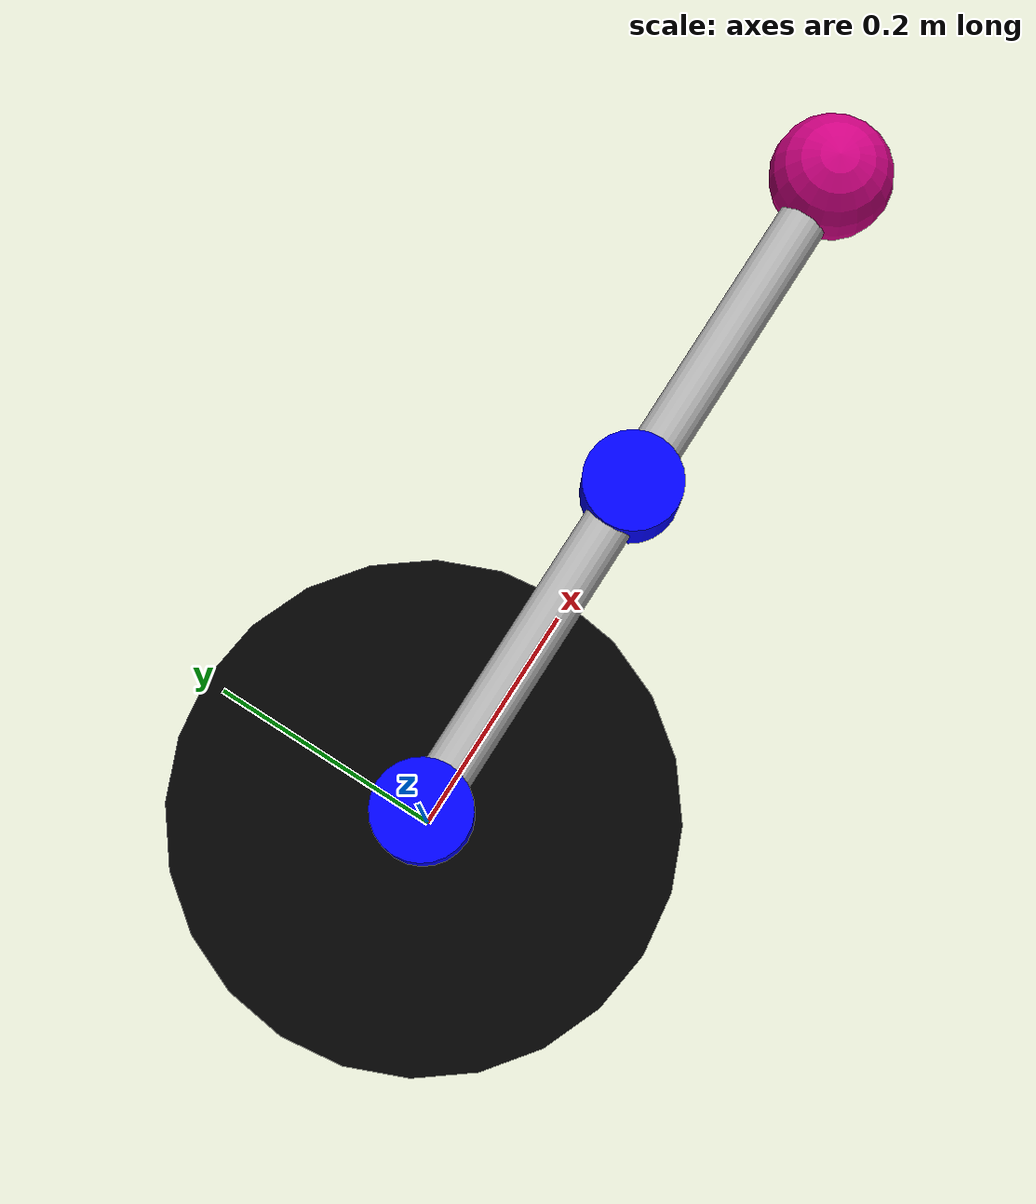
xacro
<?xml version="1.0"?>
<robot name="reacher5" xmlns:xacro="http://ros.org/wiki/xacro">

  <gazebo>
      <self_collide>true</self_collide>
  </gazebo>

  <xacro:arg name="namespace" default="" />
  <xacro:arg name="dof" default="2" />
  <xacro:arg name="use_imu" default="false" />
  <xacro:arg name="use_lidar" default="false" />
  <xacro:arg name="use_rgb" default="false" />
  <xacro:arg name="use_rgbd" default="false" />

  <xacro:include filename="$(find marr_gz)/urdf/inertia.xacro" />
  <xacro:include filename="$(find marr_gz)/urdf/sensors.xacro" />

  <xacro:property name="base_mass" value="5.0" />

  <xacro:property name="arm_radius" value="0.02" />
  <xacro:property name="arm_length" value="0.3" />
  <xacro:property name="arm_mass" value="0.10" />

  <xacro:property name="j_radius" value="0.04" />

  <xacro:property name="friction" value="0.01" />
  <xacro:property name="damping" value="0.05" />
  <xacro:property name="max_effort" value="1000.0" />
  <xacro:property name="max_velocity" value="10.0" />

  <xacro:include filename="reacher_base.urdf.xacro" />

  <!-- Links -->

  <link name="base_footprint"/>

  <xacro:base_link name="base_link" />

  <xacro:if value="${$(arg dof) == 2 or $(arg dof) == 3}">
    <xacro:arm_link name="arm_link1" radius="${arm_radius}" length="${arm_length}" mass="${arm_mass}" />
  </xacro:if>

  <xacro:if value="${$(arg dof) == 4 or $(arg dof) == 5 or $(arg dof) == 6}">
    <xacro:arm_link_v name="arm_link1" radius="${arm_radius}" length="0.1" mass="${arm_mass}" />
  </xacro:if>

  <xacro:arm_link name="arm_link2" radius="${arm_radius}" length="${arm_length}" mass="${arm_mass}" />
  <xacro:if value="${$(arg dof) > 2}">
    <xacro:arm_link name="arm_link3" radius="${arm_radius}" length="${arm_length}" mass="${arm_mass}" />
  </xacro:if>
  <xacro:if value="${$(arg dof) > 3}">
    <xacro:arm_link name="arm_link4" radius="${arm_radius}" length="${arm_length}" mass="${arm_mass}" />
  </xacro:if>
  <xacro:if value="${$(arg dof) > 4}">
    <xacro:arm_link name="arm_link5" radius="${arm_radius}" length="${arm_length}" mass="${arm_mass}" />
  </xacro:if>
  <xacro:if value="${$(arg dof) > 5}">
    <xacro:arm_link name="arm_link6" radius="${arm_radius}" length="${arm_length}" mass="${arm_mass}" />
  </xacro:if>

  <xacro:if value="${$(arg dof) == 2}">
    <xacro:arm_joint_link_z name="arm_joint_link1" radius="${j_radius}" />
    <xacro:arm_joint_link_z name="arm_joint_link2" radius="${j_radius}" />
  </xacro:if>

  <xacro:if value="${$(arg dof) == 3}">
    <xacro:arm_joint_link_z name="arm_joint_link1" radius="${j_radius}" />
    <xacro:arm_joint_link_z name="arm_joint_link2" radius="${j_radius}" />
    <xacro:arm_joint_link_z name="arm_joint_link3" radius="${j_radius}" />
  </xacro:if>

  <xacro:if value="${$(arg dof) == 4}">
    <xacro:arm_joint_link_z name="arm_joint_link1" radius="${j_radius}" />
    <xacro:arm_joint_link_y name="arm_joint_link2" radius="${j_radius}" />
    <xacro:arm_joint_link_y name="arm_joint_link3" radius="${j_radius}" />
    <xacro:arm_joint_link_y name="arm_joint_link4" radius="${j_radius}" />
  </xacro:if>

  <xacro:if value="${$(arg dof) == 5}">
    <xacro:arm_joint_link_z name="arm_joint_link1" radius="${j_radius}" />
    <xacro:arm_joint_link_y name="arm_joint_link2" radius="${j_radius}" />
    <xacro:arm_joint_link_y name="arm_joint_link3" radius="${j_radius}" />
    <xacro:arm_joint_link_y name="arm_joint_link4" radius="${j_radius}" />
    <xacro:arm_joint_link_z name="arm_joint_link5" radius="${j_radius}" />
  </xacro:if>

  <xacro:if value="${$(arg dof) == 6}">
    <xacro:arm_joint_link_z name="arm_joint_link1" radius="${j_radius}" />
    <xacro:arm_joint_link_y name="arm_joint_link2" radius="${j_radius}" />
    <xacro:arm_joint_link_y name="arm_joint_link3" radius="${j_radius}" />
    <xacro:arm_joint_link_y name="arm_joint_link4" radius="${j_radius}" />
    <xacro:arm_joint_link_y name="arm_joint_link5" radius="${j_radius}" />
    <xacro:arm_joint_link_z name="arm_joint_link6" radius="${j_radius}" />
  </xacro:if>

  <xacro:tip_link name="tip_link" />

  <!-- Joints -->

  <xacro:fixed_joint name="base_joint" parent="base_link" child="base_footprint" x="0" z="-0.05" />

  <xacro:if value="${$(arg dof) == 2}">
    <xacro:revolute_joint_z name="arm_joint1" parent="base_link" child="arm_joint_link1"
     x="0" z="${0.1+0.025}" lower="${-pi}" upper="${pi}" />
   <xacro:revolute_joint_z name="arm_joint2" parent="arm_link1" child="arm_joint_link2"
     x="${arm_length/2}" z="0" lower="${-7/8*pi}" upper="${7/8*pi}" />
    <xacro:fixed_joint name="arm_joint1b" parent="arm_joint_link1" child="arm_link1" x="${arm_length/2}" z="0" />
    <xacro:fixed_joint name="arm_joint2b" parent="arm_joint_link2" child="arm_link2" x="${arm_length/2}" z="0" />
    <xacro:fixed_joint name="tip_joint" parent="arm_link2" child="tip_link" x="${arm_length/2}" z="0" />
  </xacro:if>

  <xacro:if value="${$(arg dof) == 3}">
    <xacro:revolute_joint_z name="arm_joint1" parent="base_link" child="arm_joint_link1"
     x="0" z="${0.1+0.025}" lower="${-pi}" upper="${pi}" />
    <xacro:revolute_joint_z name="arm_joint2" parent="arm_link1" child="arm_joint_link2"
     x="${arm_length/2}" z="0" lower="${-1.8}" upper="${1.8}" />
    <xacro:revolute_joint_z name="arm_joint3" parent="arm_link2" child="arm_joint_link3"
     x="${arm_length/2}" z="0" lower="${-1.8}" upper="${1.8}" />
    <xacro:fixed_joint name="arm_joint1b" parent="arm_joint_link1" child="arm_link1" x="${arm_length/2}" z="0" />
    <xacro:fixed_joint name="arm_joint2b" parent="arm_joint_link2" child="arm_link2" x="${arm_length/2}" z="0" />
    <xacro:fixed_joint name="arm_joint3b" parent="arm_joint_link3" child="arm_link3" x="${arm_length/2}" z="0" />
  <xacro:fixed_joint name="tip_joint" parent="arm_link3" child="tip_link" x="${arm_length/2}" z="0" />
  </xacro:if>

  <xacro:if value="${$(arg dof) == 4}">
    <xacro:revolute_joint_z name="arm_joint1" parent="base_link" child="arm_joint_link1"
     x="0" z="${0.1+0.025}" lower="${-pi}" upper="${pi}" />
    <xacro:revolute_joint_y name="arm_joint2" parent="arm_link1" child="arm_joint_link2"
     x="0" z="0.05" lower="${-1.8}" upper="${1.8}" />
    <xacro:revolute_joint_y name="arm_joint3" parent="arm_link2" child="arm_joint_link3"
     x="${arm_length/2}" z="0" lower="${-1.8}" upper="${1.8}" />
    <xacro:revolute_joint_y name="arm_joint4" parent="arm_link3" child="arm_joint_link4"
     x="${arm_length/2}" z="0" lower="${-1.8}" upper="${1.8}" />
    <xacro:fixed_joint name="arm_joint1b" parent="arm_joint_link1" child="arm_link1" x="0" z="0.05" />
    <xacro:fixed_joint name="arm_joint2b" parent="arm_joint_link2" child="arm_link2" x="${arm_length/2}" z="0" />
    <xacro:fixed_joint name="arm_joint3b" parent="arm_joint_link3" child="arm_link3" x="${arm_length/2}" z="0" />
    <xacro:fixed_joint name="arm_joint4b" parent="arm_joint_link4" child="arm_link4" x="${arm_length/2}" z="0" />
    <xacro:fixed_joint name="tip_joint" parent="arm_link4" child="tip_link" x="${arm_length/2}" z="0" />
  </xacro:if>

  <xacro:if value="${$(arg dof) == 5}">
    <xacro:revolute_joint_z name="arm_joint1" parent="base_link" child="arm_joint_link1"
     x="0" z="${0.1+0.025}" lower="${-pi}" upper="${pi}" />
    <xacro:revolute_joint_y name="arm_joint2" parent="arm_link1" child="arm_joint_link2"
     x="0" z="0.05" lower="${-1.8}" upper="${1.8}" />
    <xacro:revolute_joint_y name="arm_joint3" parent="arm_link2" child="arm_joint_link3"
     x="${arm_length/2}" z="0" lower="${-1.8}" upper="${1.8}" />
    <xacro:revolute_joint_y name="arm_joint4" parent="arm_link3" child="arm_joint_link4"
     x="${arm_length/2}" z="0" lower="${-1.8}" upper="${1.8}" />
    <xacro:revolute_joint_z name="arm_joint5" parent="arm_link4" child="arm_joint_link5"
     x="${arm_length/2}" z="0" lower="${-1.8}" upper="${1.8}" />
    <xacro:fixed_joint name="arm_joint1b" parent="arm_joint_link1" child="arm_link1" x="0" z="0.05" />
    <xacro:fixed_joint name="arm_joint2b" parent="arm_joint_link2" child="arm_link2" x="${arm_length/2}" z="0" />
    <xacro:fixed_joint name="arm_joint3b" parent="arm_joint_link3" child="arm_link3" x="${arm_length/2}" z="0" />
    <xacro:fixed_joint name="arm_joint4b" parent="arm_joint_link4" child="arm_link4" x="${arm_length/2}" z="0" />
    <xacro:fixed_joint name="arm_joint5b" parent="arm_joint_link5" child="arm_link5" x="${arm_length/2}" z="0" />
    <xacro:fixed_joint name="tip_joint" parent="arm_link5" child="tip_link" x="${arm_length/2}" z="0" />
  </xacro:if>

  <xacro:if value="${$(arg dof) == 6}">
    <xacro:revolute_joint_z name="arm_joint1" parent="base_link" child="arm_joint_link1"
     x="0" z="${0.1+0.025}" lower="${-pi}" upper="${pi}" />
    <xacro:revolute_joint_y name="arm_joint2" parent="arm_link1" child="arm_joint_link2"
     x="0" z="0.05" lower="${-1.8}" upper="${1.8}" />
    <xacro:revolute_joint_y name="arm_joint3" parent="arm_link2" child="arm_joint_link3"
     x="${arm_length/2}" z="0" lower="${-1.8}" upper="${1.8}" />
    <xacro:revolute_joint_y name="arm_joint4" parent="arm_link3" child="arm_joint_link4"
     x="${arm_length/2}" z="0" lower="${-1.8}" upper="${1.8}" />
    <xacro:revolute_joint_y name="arm_joint5" parent="arm_link4" child="arm_joint_link5"
     x="${arm_length/2}" z="0" lower="${-1.8}" upper="${1.8}" />
    <xacro:revolute_joint_z name="arm_joint6" parent="arm_link5" child="arm_joint_link6"
     x="${arm_length/2}" z="0" lower="${-1.8}" upper="${1.8}" />
    <xacro:fixed_joint name="arm_joint1b" parent="arm_joint_link1" child="arm_link1" x="0" z="0.05" />
    <xacro:fixed_joint name="arm_joint2b" parent="arm_joint_link2" child="arm_link2" x="${arm_length/2}" z="0" />
    <xacro:fixed_joint name="arm_joint3b" parent="arm_joint_link3" child="arm_link3" x="${arm_length/2}" z="0" />
    <xacro:fixed_joint name="arm_joint4b" parent="arm_joint_link4" child="arm_link4" x="${arm_length/2}" z="0" />
    <xacro:fixed_joint name="arm_joint5b" parent="arm_joint_link5" child="arm_link5" x="${arm_length/2}" z="0" />
    <xacro:fixed_joint name="arm_joint6b" parent="arm_joint_link6" child="arm_link6" x="${arm_length/2}" z="0" />
    <xacro:fixed_joint name="tip_joint" parent="arm_link6" child="tip_link" x="${arm_length/2}" z="0" />
  </xacro:if>

  <!-- sensors -->

  <xacro:if value="$(arg use_imu)">
    <xacro:imu parent="tip_link" x="0.0" y="0.0" z="-0.06" />
  </xacro:if>

  <xacro:if value="$(arg use_lidar)">
    <xacro:lidar parent="tip_link" x="0.0" y="0.0" z="0.075" />
  </xacro:if>

  <xacro:if value="$(arg use_rgb)">
    <xacro:rgb parent="tip_link" x="0.05" y="0.0" z="0" p="${pi/2}" />
  </xacro:if>

  <xacro:if value="$(arg use_rgbd)">
    <xacro:rgbd parent="tip_link" x="0.05" y="0.0" z="0" p="${pi/2}" />
  </xacro:if>

  <ros2_control name="GazeboSimSystem" type="system">
    <hardware>
      <plugin>gz_ros2_control/GazeboSimSystem</plugin>
    </hardware>

    <joint name="arm_joint1">
      <command_interface name="effort">
        <param name="min">-${max_effort}</param>
        <param name="max">${max_effort}</param>
      </command_interface>
      <command_interface name="velocity">
        <param name="min">-${max_velocity}</param>
        <param name="max">${max_velocity}</param>
      </command_interface>
      <command_interface name="position">
        <param name="min">-${pi/2}</param>
        <param name="max">${pi/2}</param>
      </command_interface>
      <state_interface name="position"/>
      <state_interface name="velocity"/>
    </joint>

    <joint name="arm_joint2">
      <command_interface name="effort">
        <param name="min">-${max_effort}</param>
        <param name="max">${max_effort}</param>
      </command_interface>
      <command_interface name="velocity">
        <param name="min">-${max_velocity}</param>
        <param name="max">${max_velocity}</param>
      </command_interface>
      <command_interface name="position">
        <param name="min">-${pi/2}</param>
        <param name="max">${pi/2}</param>
      </command_interface>
      <state_interface name="position"/>
      <state_interface name="velocity"/>
    </joint>

    <xacro:if value="${$(arg dof) > 2}">
    <joint name="arm_joint3">
      <command_interface name="effort">
        <param name="min">-${max_effort}</param>
        <param name="max">${max_effort}</param>
      </command_interface>
      <command_interface name="velocity">
        <param name="min">-${max_velocity}</param>
        <param name="max">${max_velocity}</param>
      </command_interface>
      <command_interface name="position">
        <param name="min">-${pi/2}</param>
        <param name="max">${pi/2}</param>
      </command_interface>
      <state_interface name="position"/>
      <state_interface name="velocity"/>
    </joint>
    </xacro:if>

    <xacro:if value="${$(arg dof) > 3}">
    <joint name="arm_joint4">
      <command_interface name="effort">
        <param name="min">-${max_effort}</param>
        <param name="max">${max_effort}</param>
      </command_interface>
      <command_interface name="velocity">
        <param name="min">-${max_velocity}</param>
        <param name="max">${max_velocity}</param>
      </command_interface>
      <command_interface name="position">
        <param name="min">-${pi/2}</param>
        <param name="max">${pi/2}</param>
      </command_interface>
      <state_interface name="position"/>
      <state_interface name="velocity"/>
    </joint>
    </xacro:if>

    <xacro:if value="${$(arg dof) > 4}">
    <joint name="arm_joint5">
      <command_interface name="effort">
        <param name="min">-${max_effort}</param>
        <param name="max">${max_effort}</param>
      </command_interface>
      <command_interface name="velocity">
        <param name="min">-${max_velocity}</param>
        <param name="max">${max_velocity}</param>
      </command_interface>
      <command_interface name="position">
        <param name="min">-${pi/2}</param>
        <param name="max">${pi/2}</param>
      </command_interface>
      <state_interface name="position"/>
      <state_interface name="velocity"/>
    </joint>
    </xacro:if>

    <xacro:if value="${$(arg dof) > 5}">
    <joint name="arm_joint6">
      <command_interface name="effort">
        <param name="min">-${max_effort}</param>
        <param name="max">${max_effort}</param>
      </command_interface>
      <command_interface name="velocity">
        <param name="min">-${max_velocity}</param>
        <param name="max">${max_velocity}</param>
      </command_interface>
      <command_interface name="position">
        <param name="min">-${pi/2}</param>
        <param name="max">${pi/2}</param>
      </command_interface>
      <state_interface name="position"/>
      <state_interface name="velocity"/>
    </joint>
    </xacro:if>

  </ros2_control>

  <gazebo>
    <!-- Joint state publisher -->
    <plugin filename="gz_ros2_control-system" name="gz_ros2_control::GazeboSimROS2ControlPlugin">
      <ros>
        <namespace>$(arg namespace)</namespace>
      </ros>
      <parameters>$(find marr_gz)/config/reacher$(arg dof)_controllers.yaml</parameters>
    </plugin>
  </gazebo>

</robot>

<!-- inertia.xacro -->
<robot xmlns:xacro="http://ros.org/wiki/xacro">

  <xacro:macro name="sphere_inertial" params="mass radius">
    <inertial>
      <origin xyz="0 0 0" rpy="0 0 0"/> <mass value="${mass}"/>
      <inertia
        ixx="${(2/5) * mass * (radius*radius)}"
        ixy="0.0"
        ixz="0.0"
        iyy="${(2/5) * mass * (radius*radius)}"
        iyz="0.0"
        izz="${(2/5) * mass * (radius*radius)}"
      />
    </inertial>
  </xacro:macro>

  <xacro:macro name="cylinder_inertial" params="mass radius length">
    <inertial>
      <origin xyz="0 0 0" rpy="0 0 0"/>
      <mass value="${mass}"/>
      <inertia
        ixx="${(1/12) * mass * (3*radius*radius + length*length)}"
        ixy="0.0"
        ixz="0.0"
        iyy="${(1/12) * mass * (3*radius*radius + length*length)}"
        iyz="0.0"
        izz="${(1/2) * mass * (radius*radius)}"
      />
    </inertial>
  </xacro:macro>

  <xacro:macro name="box_inertial" params="mass x_dim y_dim z_dim">
    <inertial>
      <origin xyz="0 0 0" rpy="0 0 0"/>
      <mass value="${mass}"/>
      <inertia
        ixx="${(1/12) * mass * (y_dim*y_dim + z_dim*z_dim)}"
        ixy="0.0"
        ixz="0.0"
        iyy="${(1/12) * mass * (x_dim*x_dim + z_dim*z_dim)}"
        iyz="0.0"
        izz="${(1/12) * mass * (x_dim*x_dim + y_dim*y_dim)}"
      />
    </inertial>
  </xacro:macro>

</robot>

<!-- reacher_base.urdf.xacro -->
<robot xmlns:xacro="http://ros.org/wiki/xacro">

  <xacro:include filename="inertia.xacro" />

  <material name="orange"><color rgba="1.0 0.33 0.0 1.0"/></material>
  <material name="red"><color rgba="0.8 0 0 1"/></material>
  <material name="purple"><color rgba="0.8 0 0.5 1"/></material>
  <material name="green"><color rgba="0 1 0 1"/></material>
  <material name="blue"><color rgba="0 0 1 1"/></material>
  <material name="black"><color rgba="0 0 0 1.0"/></material>
  <material name="grey"><color rgba="0.7 0.7 0.7 1.0"/></material>
  <material name="white"><color rgba="1 1 1 1.0"/></material>

  <xacro:macro name="arm_link" params="name radius length mass">
    <link name="${name}">
      <visual>
        <geometry>
            <cylinder radius="${radius}" length="${length}"/>
        </geometry>
        <origin xyz="0.0 0.0 0.0" rpy="0.0 ${pi/2} 0.0"/>
        <material name="grey"/>
      </visual>
      <collision>
        <geometry>
            <cylinder radius="${radius}" length="${length}"/>
        </geometry>
        <origin xyz="0.0 0.0 0.0" rpy="0.0 ${pi/2} 0.0"/>
      </collision>
      <xacro:cylinder_inertial mass="${mass}" radius="${radius}" length="${length}" />
    </link>
  </xacro:macro>

  <xacro:macro name="arm_link_v" params="name radius length mass">
    <link name="${name}">
      <visual>
        <geometry>
            <cylinder radius="${radius}" length="${length}"/>
        </geometry>
        <origin xyz="0.0 0.0 0.0" rpy="0.0 0.0 0.0"/>
        <material name="grey"/>
      </visual>
      <collision>
        <geometry>
            <cylinder radius="${radius}" length="${length}"/>
        </geometry>
        <origin xyz="0.0 0.0 0.0" rpy="0.0 0.0 0.0"/>
      </collision>
      <xacro:cylinder_inertial mass="${mass}" radius="${radius}" length="${length}" />
    </link>
  </xacro:macro>

  <xacro:macro name="arm_joint_link_z" params="name radius" >
    <link name="${name}">
      <visual>
        <geometry>
            <cylinder radius="${radius}" length="0.05"/>
        </geometry>
        <origin xyz="0 0 0" rpy="0 0 0"/>
        <material name="blue"/>
      </visual>
      <collision>
        <geometry>
            <cylinder radius="${radius}" length="0.05"/>
        </geometry>
        <origin xyz="0 0 0" rpy="0 0 0"/>
      </collision>
      <xacro:cylinder_inertial mass="0.05" radius="${radius}" length="0.05" />
    </link>
  </xacro:macro>

  <xacro:macro name="arm_joint_link_y" params="name radius" >
    <link name="${name}">
      <visual>
        <geometry>
            <cylinder radius="${radius}" length="0.05"/>
        </geometry>
        <origin xyz="0 0 0" rpy="${pi/2} 0 0"/>
        <material name="green"/>
      </visual>
      <collision>
        <geometry>
            <cylinder radius="${radius}" length="0.05"/>
        </geometry>
        <origin xyz="0 0 0" rpy="${pi/2} 0 0"/>
      </collision>
      <xacro:cylinder_inertial mass="0.05" radius="${radius}" length="0.05" />
    </link>
  </xacro:macro>

  <xacro:macro name="arm_joint_link_x" params="name radius" >
    <link name="${name}">
      <visual>
        <geometry>
            <cylinder radius="${radius}" length="0.05"/>
        </geometry>
        <origin xyz="0 0 0" rpy="0 ${pi/2} 0"/>
        <material name="red"/>
      </visual>
      <collision>
        <geometry>
            <cylinder radius="${radius}" length="0.05"/>
        </geometry>
        <origin xyz="0 0 0" rpy="0 ${pi/2} 0"/>
      </collision>
      <xacro:cylinder_inertial mass="0.05" radius="${radius}" length="0.05" />
    </link>
  </xacro:macro>

  <xacro:macro name="base_link" params="name">
      <link name="${name}">
        <visual>
            <geometry>
                <cylinder radius="0.2" length="0.1"/>
            </geometry>
            <origin xyz="0.0 0.0 0.05" rpy="0.0 0.0 0.0"/>
            <material name="black"/>
        </visual>
        <collision>
            <geometry>
                <cylinder radius="0.2" length="0.1"/>
            </geometry>
            <origin xyz="0.0 0.0 0.05" rpy="0.0 0.0 0.0"/>
        </collision>
        <xacro:cylinder_inertial mass="${base_mass}" radius="0.2" length="0.1" />
      </link>
  </xacro:macro>

  <xacro:macro name="tip_link" params="name">
    <link name="${name}">
      <visual>
        <geometry>
            <sphere radius="0.05"/>
        </geometry>
        <origin xyz="0.0 0.0 0.0" rpy="0.0 0.0 0.0"/>
        <material name="purple"/>
      </visual>
      <collision>
        <geometry>
            <sphere radius="0.05"/>
        </geometry>
        <origin xyz="0.0 0.0 0.0" rpy="0.0 0.0 0.0"/>
      </collision>
      <xacro:sphere_inertial mass="0.005" radius="0.05" />
    </link>
  </xacro:macro>

  <xacro:macro name="fixed_joint" params="name parent child x z">
      <joint name="${name}" type="fixed">
        <parent link="${parent}"/>
        <child link="${child}"/>
        <origin xyz="${x} 0.0 ${z}" rpy="0.0 0.0 0.0"/>
      </joint>
  </xacro:macro>

  <xacro:macro name="revolute_joint_z" params="name parent child x z lower upper">
      <joint name="${name}" type="revolute">
        <parent link="${parent}"/>
        <child link="${child}"/>
        <origin xyz="${x} 0 ${z}" rpy="0 0 0"/>
        <axis xyz="0 0 1"/>
        <dynamics damping="${damping}" friction="${friction}"/>
        <limit lower="${lower}" upper="${upper}"
            effort="${max_effort}" velocity="${max_velocity}"/>
      </joint>
  </xacro:macro>

  <xacro:macro name="revolute_joint_y" params="name parent child x z lower upper">
      <joint name="${name}" type="revolute">
        <parent link="${parent}"/>
        <child link="${child}"/>
        <origin xyz="${x} 0 ${z}" rpy="0 0 0"/>
        <axis xyz="0 1 0"/>
        <dynamics damping="${damping}" friction="${friction}"/>
        <limit lower="${lower}" upper="${upper}"
            effort="${max_effort}" velocity="${max_velocity}"/>
      </joint>
  </xacro:macro>

  <xacro:macro name="revolute_joint_x" params="name parent child x z lower upper">
      <joint name="${name}" type="revolute">
        <parent link="${parent}"/>
        <child link="${child}"/>
        <origin xyz="${x} 0 ${z}" rpy="0 0 0"/>
        <axis xyz="1 0 0"/>
        <dynamics damping="${damping}" friction="${friction}"/>
        <limit lower="${lower}" upper="${upper}"
            effort="${max_effort}" velocity="${max_velocity}"/>
      </joint>
  </xacro:macro>

</robot>
